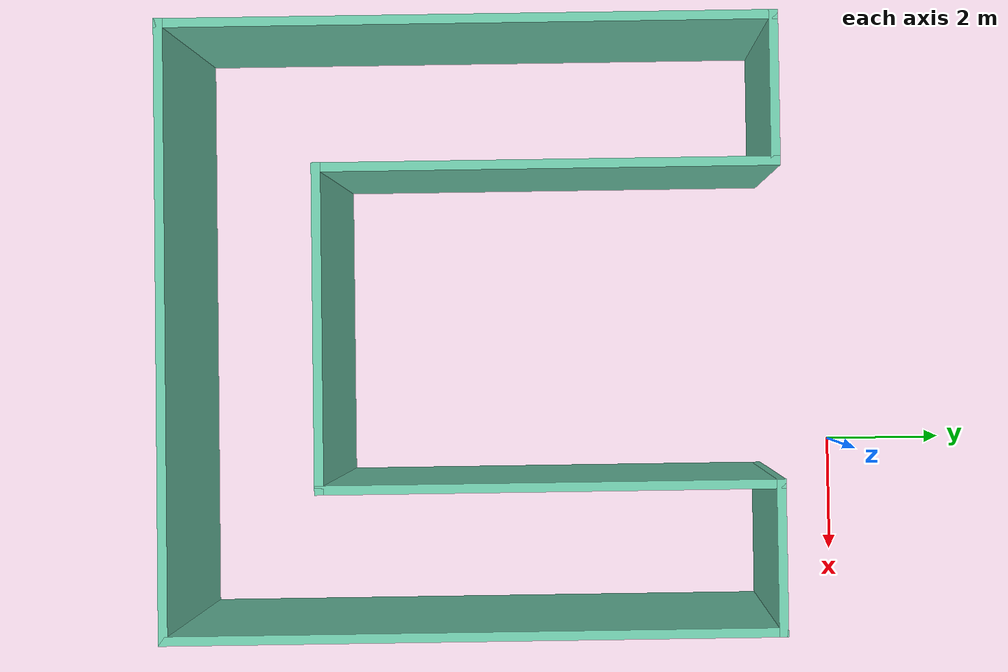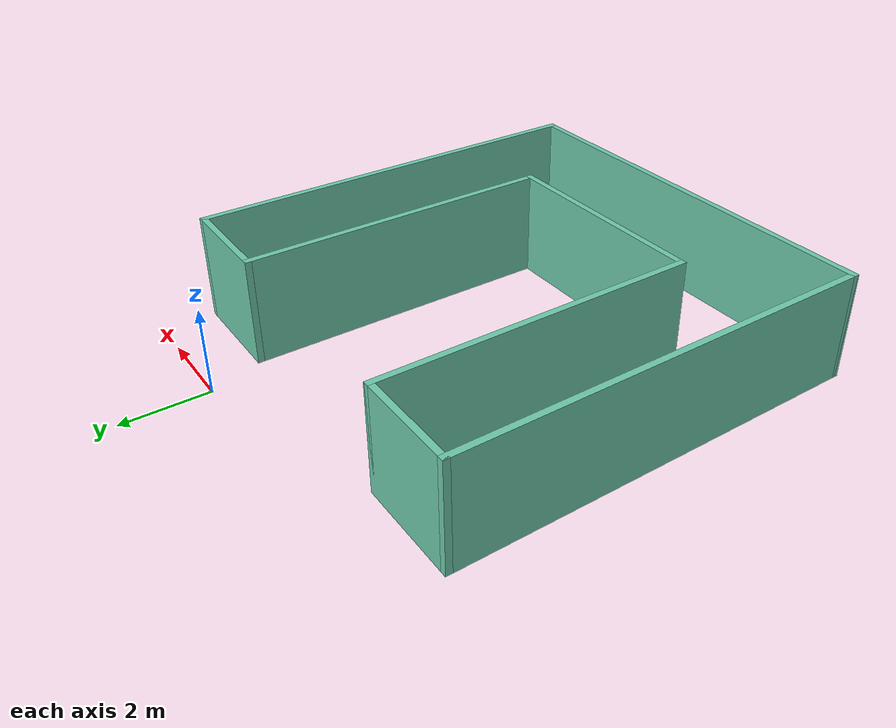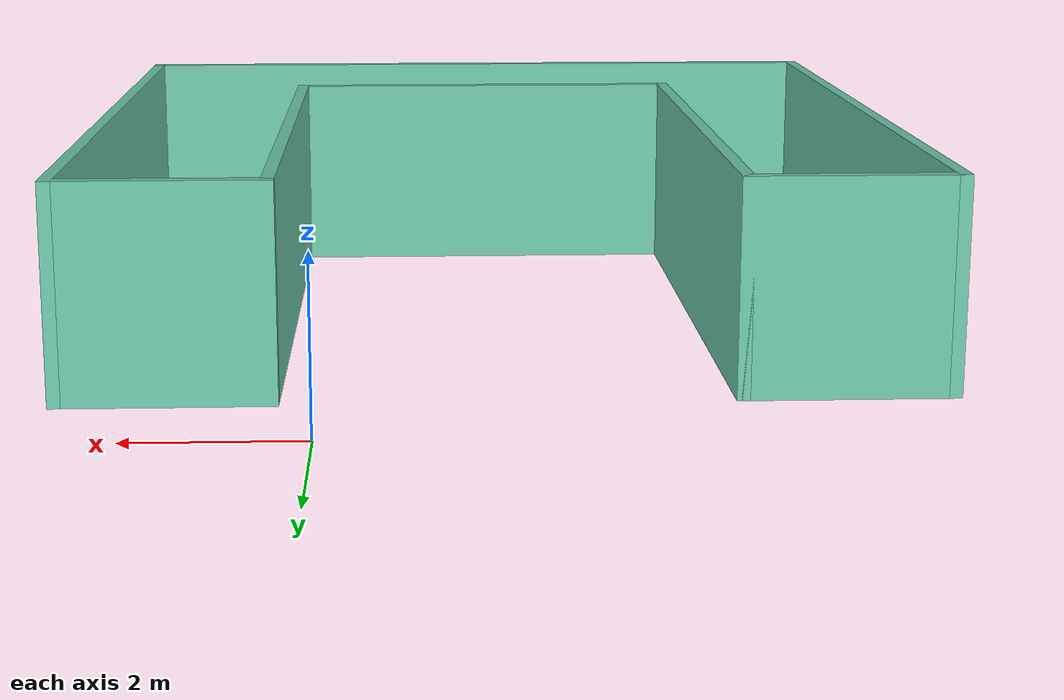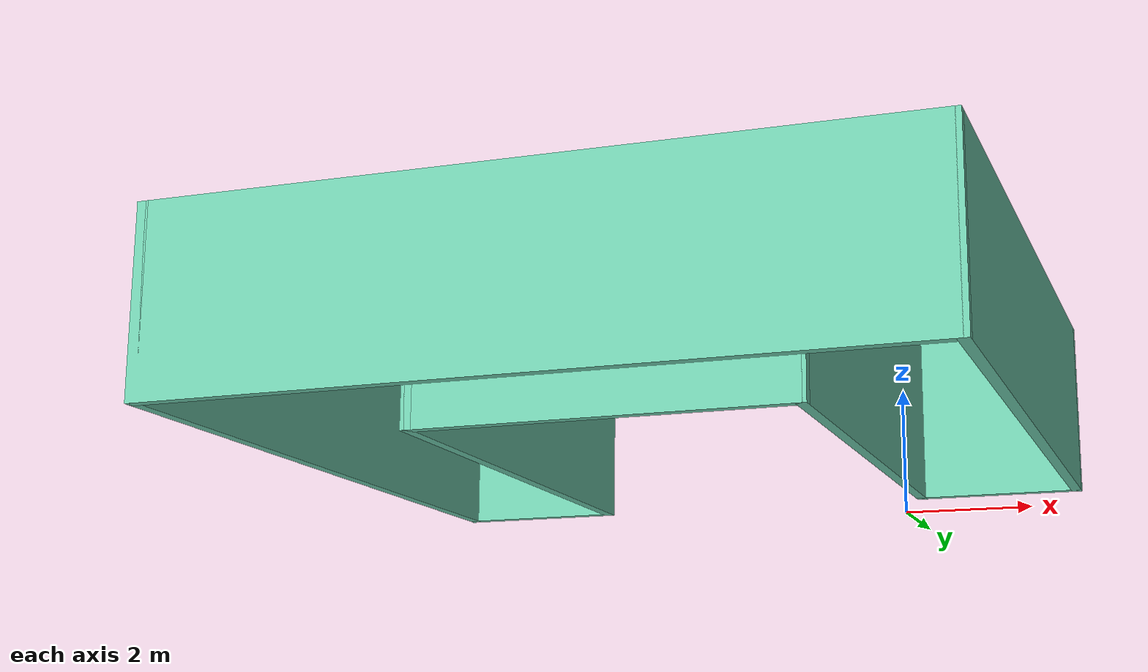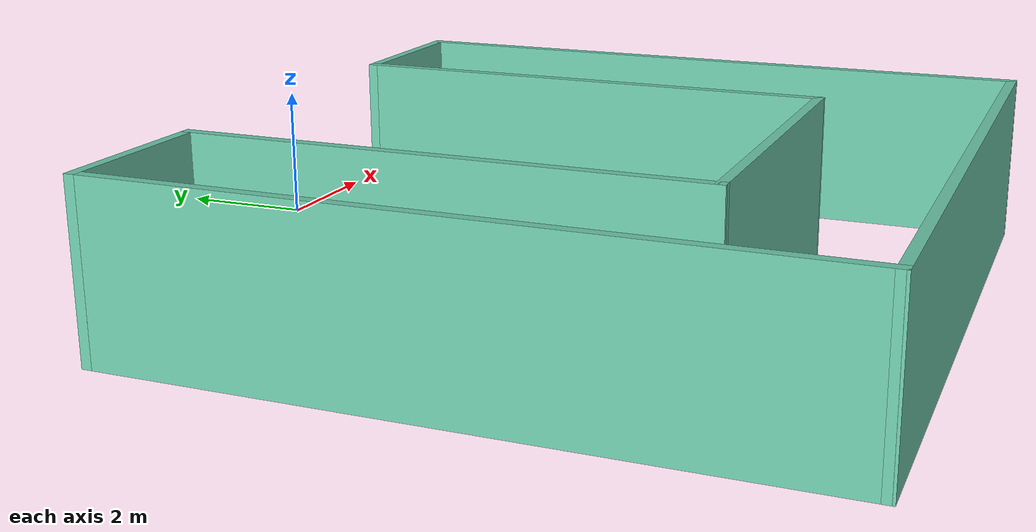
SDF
<?xml version='1.0'?>
<sdf version='1.6'>
  <model name='building'>
    <pose frame=''>-2.07798 -6.22724 0 0 -0 0</pose>
    <link name='Wall_17'>
      <collision name='Wall_17_Collision'>
        <geometry>
          <box>
            <size>10 0.15 2.5</size>
          </box>
        </geometry>
        <pose frame=''>0 0 1.25 0 -0 0</pose>
      </collision>
      <visual name='Wall_17_Visual'>
        <pose frame=''>0 0 1.25 0 -0 0</pose>
        <geometry>
          <box>
            <size>10 0.15 2.5</size>
          </box>
        </geometry>
        <material>
          <script>
            <uri>file://media/materials/scripts/gazebo.material</uri>
            <name>Gazebo/Grey</name>
          </script>
          <ambient>0.435294 0.796078 0.67451 1</ambient>
        </material>
      </visual>
      <pose frame=''>-4.92498 -0.000237 0 0 0 -1.5708</pose>
    </link>
    <link name='Wall_20'>
      <collision name='Wall_20_Collision'>
        <geometry>
          <box>
            <size>2.5 0.15 2.5</size>
          </box>
        </geometry>
        <pose frame=''>0 0 1.25 0 -0 0</pose>
      </collision>
      <visual name='Wall_20_Visual'>
        <pose frame=''>0 0 1.25 0 -0 0</pose>
        <geometry>
          <box>
            <size>2.5 0.15 2.5</size>
          </box>
        </geometry>
        <material>
          <script>
            <uri>file://media/materials/scripts/gazebo.material</uri>
            <name>Gazebo/Grey</name>
          </script>
          <ambient>0.435294 0.796078 0.67451 1</ambient>
        </material>
      </visual>
      <pose frame=''>-3.74998 4.92476 0 0 -0 0</pose>
    </link>
    <link name='Wall_22'>
      <collision name='Wall_22_Collision'>
        <geometry>
          <box>
            <size>7.5 0.15 2.5</size>
          </box>
        </geometry>
        <pose frame=''>0 0 1.25 0 -0 0</pose>
      </collision>
      <visual name='Wall_22_Visual'>
        <pose frame=''>0 0 1.25 0 -0 0</pose>
        <geometry>
          <box>
            <size>7.5 0.15 2.5</size>
          </box>
        </geometry>
        <material>
          <script>
            <uri>file://media/materials/scripts/gazebo.material</uri>
            <name>Gazebo/Grey</name>
          </script>
          <ambient>0.435294 0.796078 0.67451 1</ambient>
        </material>
      </visual>
      <pose frame=''>-2.57498 1.24976 0 0 0 -1.5708</pose>
    </link>
    <link name='Wall_25'>
      <collision name='Wall_25_Collision'>
        <geometry>
          <box>
            <size>10 0.15 2.5</size>
          </box>
        </geometry>
        <pose frame=''>0 0 1.25 0 -0 0</pose>
      </collision>
      <visual name='Wall_25_Visual'>
        <pose frame=''>0 0 1.25 0 -0 0</pose>
        <geometry>
          <box>
            <size>10 0.15 2.5</size>
          </box>
        </geometry>
        <material>
          <script>
            <uri>file://media/materials/scripts/gazebo.material</uri>
            <name>Gazebo/Grey</name>
          </script>
          <ambient>0.435294 0.796078 0.67451 1</ambient>
        </material>
      </visual>
      <pose frame=''>0 -4.925 0 0 -0 4.9e-05</pose>
    </link>
    <link name='Wall_27'>
      <collision name='Wall_27_Collision'>
        <geometry>
          <box>
            <size>10 0.15 2.5</size>
          </box>
        </geometry>
        <pose frame=''>0 0 1.25 0 -0 0</pose>
      </collision>
      <visual name='Wall_27_Visual'>
        <pose frame=''>0 0 1.25 0 -0 0</pose>
        <geometry>
          <box>
            <size>10 0.15 2.5</size>
          </box>
        </geometry>
        <material>
          <script>
            <uri>file://media/materials/scripts/gazebo.material</uri>
            <name>Gazebo/Grey</name>
          </script>
          <ambient>0.435294 0.796078 0.67451 1</ambient>
        </material>
      </visual>
      <pose frame=''>4.92498 0.000241 0 0 -0 1.5708</pose>
    </link>
    <link name='Wall_29'>
      <collision name='Wall_29_Collision'>
        <geometry>
          <box>
            <size>2.5 0.15 2.5</size>
          </box>
        </geometry>
        <pose frame=''>0 0 1.25 0 -0 0</pose>
      </collision>
      <visual name='Wall_29_Visual'>
        <pose frame=''>0 0 1.25 0 -0 0</pose>
        <geometry>
          <box>
            <size>2.5 0.15 2.5</size>
          </box>
        </geometry>
        <material>
          <script>
            <uri>file://media/materials/scripts/gazebo.material</uri>
            <name>Gazebo/Grey</name>
          </script>
          <ambient>0.435294 0.796078 0.67451 1</ambient>
        </material>
      </visual>
      <pose frame=''>3.74998 4.92524 0 0 -0 3.14159</pose>
    </link>
    <link name='Wall_30'>
      <collision name='Wall_30_Collision'>
        <geometry>
          <box>
            <size>7.5 0.15 2.5</size>
          </box>
        </geometry>
        <pose frame=''>0 0 1.25 0 -0 0</pose>
      </collision>
      <visual name='Wall_30_Visual'>
        <pose frame=''>0 0 1.25 0 -0 0</pose>
        <geometry>
          <box>
            <size>7.5 0.15 2.5</size>
          </box>
        </geometry>
        <material>
          <script>
            <uri>file://media/materials/scripts/gazebo.material</uri>
            <name>Gazebo/Grey</name>
          </script>
          <ambient>0.435294 0.796078 0.67451 1</ambient>
        </material>
      </visual>
      <pose frame=''>2.57498 1.25024 0 0 0 -1.5708</pose>
    </link>
    <link name='Wall_31'>
      <collision name='Wall_31_Collision'>
        <geometry>
          <box>
            <size>5.29996 0.15 2.5</size>
          </box>
        </geometry>
        <pose frame=''>0 0 1.25 0 -0 0</pose>
      </collision>
      <visual name='Wall_31_Visual'>
        <pose frame=''>0 0 1.25 0 -0 0</pose>
        <geometry>
          <box>
            <size>5.29996 0.15 2.5</size>
          </box>
        </geometry>
        <material>
          <script>
            <uri>file://media/materials/scripts/gazebo.material</uri>
            <name>Gazebo/Grey</name>
          </script>
          <ambient>0.435294 0.796078 0.67451 1</ambient>
        </material>
      </visual>
      <pose frame=''>0 -2.425 0 0 0 -3.1415</pose>
    </link>
    <static>1</static>
  </model>
</sdf>
